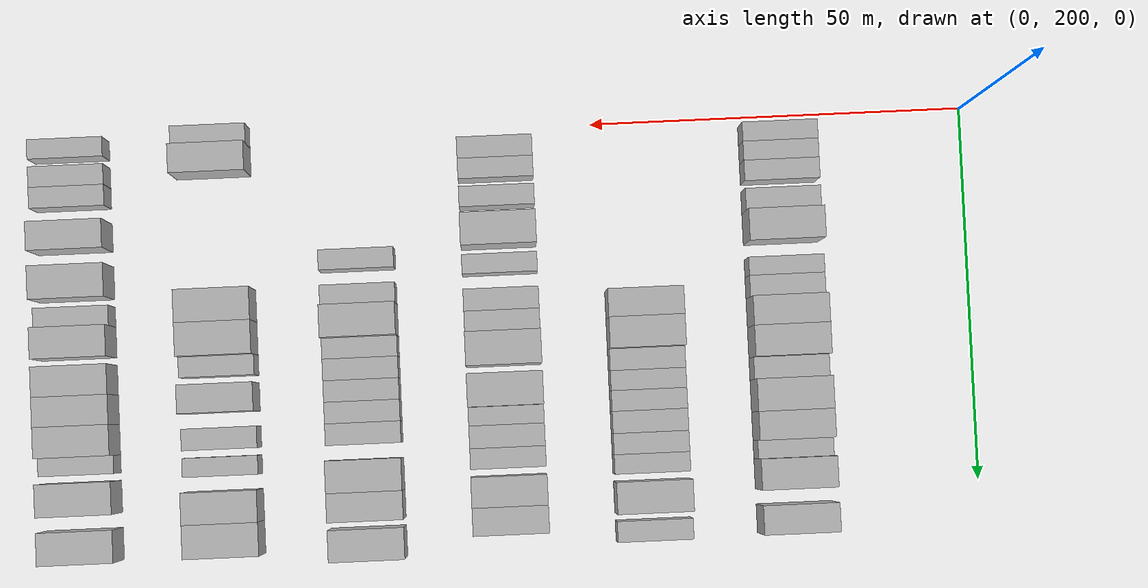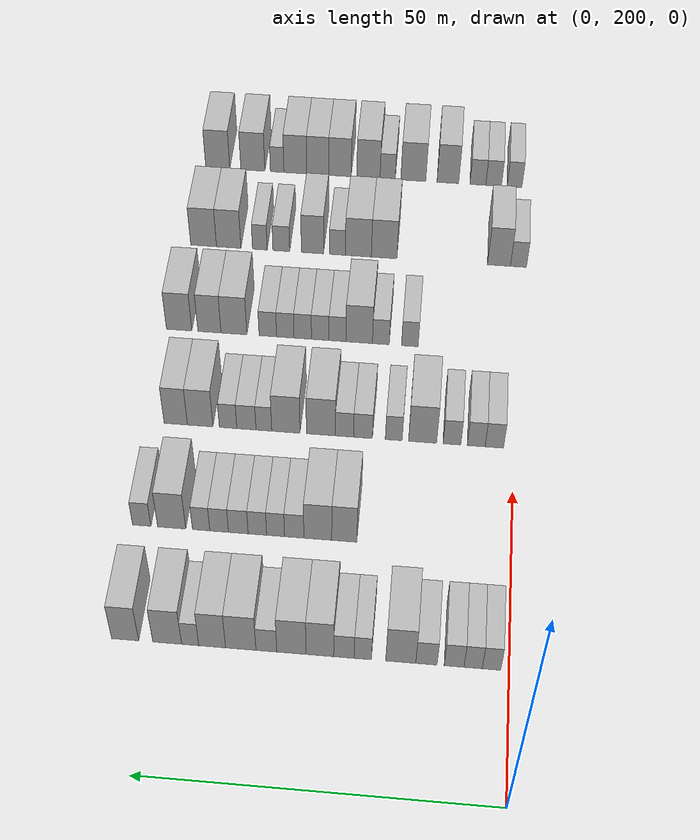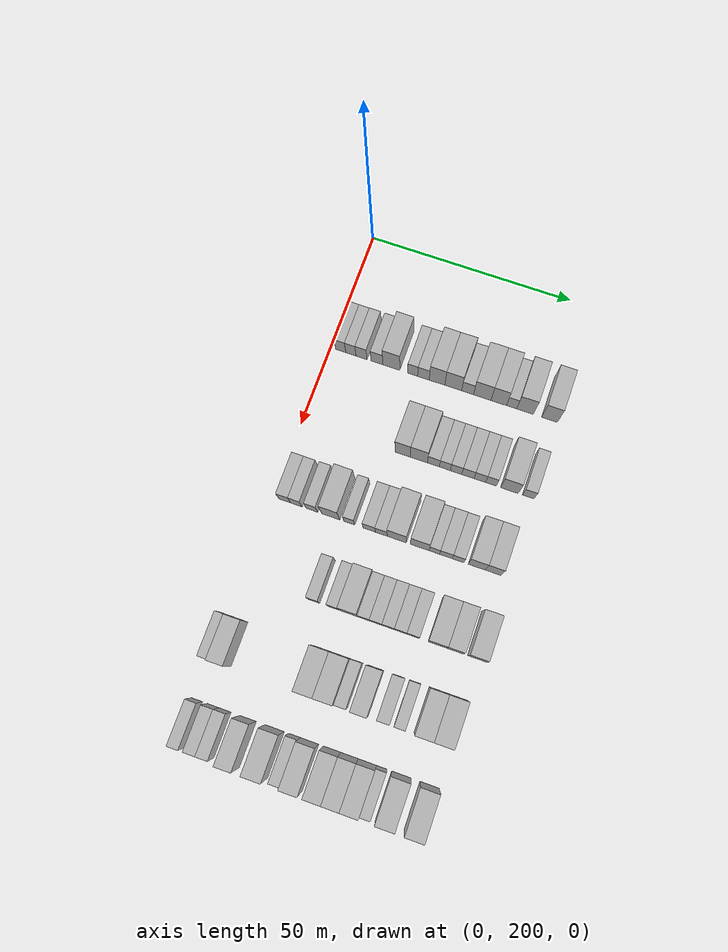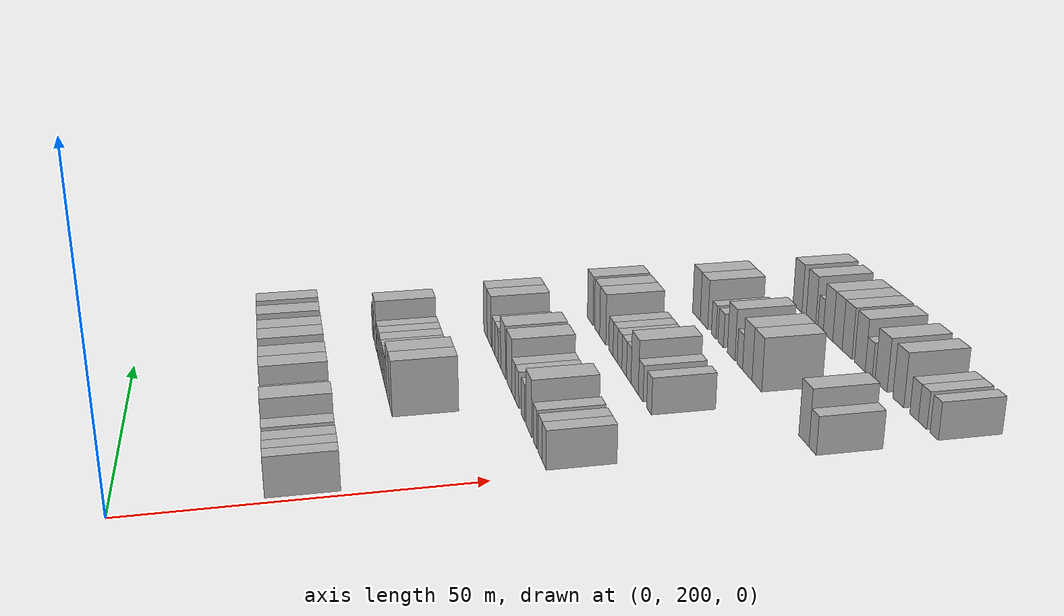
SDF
<sdf version="1.6">
 <world name="default">
  <model name="building_148">
   <static>1</static>
   <pose>25.0000 202.5290 0 0.000000 0.000000 0.000000</pose>
   <link name="link">
    <pose>0 0 3.00 0 0 0</pose>
    <collision name="collision"><geometry><box><size>10.0000 2.5559 6.0000</size></box></geometry></collision>
    <visual name="visual">
     <cast_shadows>0</cast_shadows>
     <geometry><box><size>10.0000 2.5559 6.0000</size></box></geometry>
     <material>
      <script>
       <uri>model://HANNAS_wall/materials/scripts</uri>
       <uri>model://HANNAS_wall/materials/textures</uri>
       <name>vrc/HANNAS_wall</name>
      </script>
     </material>
    </visual>
   </link>
  </model>
  <model name="building_149">
   <static>1</static>
   <pose>25.0000 205.0718 0 0.000000 0.000000 0.000000</pose>
   <link name="link">
    <pose>0 0 3.00 0 0 0</pose>
    <collision name="collision"><geometry><box><size>10.0000 2.5297 6.0000</size></box></geometry></collision>
    <visual name="visual">
     <cast_shadows>0</cast_shadows>
     <geometry><box><size>10.0000 2.5297 6.0000</size></box></geometry>
     <material>
      <script>
       <uri>model://HANNAS_wall/materials/scripts</uri>
       <uri>model://HANNAS_wall/materials/textures</uri>
       <name>vrc/HANNAS_wall</name>
      </script>
     </material>
    </visual>
   </link>
  </model>
  <model name="building_150">
   <static>1</static>
   <pose>25.0000 207.7077 0 0.000000 0.000000 0.000000</pose>
   <link name="link">
    <pose>0 0 3.00 0 0 0</pose>
    <collision name="collision"><geometry><box><size>10.0000 2.7422 6.0000</size></box></geometry></collision>
    <visual name="visual">
     <cast_shadows>0</cast_shadows>
     <geometry><box><size>10.0000 2.7422 6.0000</size></box></geometry>
     <material>
      <script>
       <uri>model://HANNAS_wall/materials/scripts</uri>
       <uri>model://HANNAS_wall/materials/textures</uri>
       <name>vrc/HANNAS_wall</name>
      </script>
     </material>
    </visual>
   </link>
  </model>
  <model name="building_151">
   <static>1</static>
   <pose>25.0000 211.5565 0 0.000000 0.000000 0.000000</pose>
   <link name="link">
    <pose>0 0 3.00 0 0 0</pose>
    <collision name="collision"><geometry><box><size>10.0000 2.9553 6.0000</size></box></geometry></collision>
    <visual name="visual">
     <cast_shadows>0</cast_shadows>
     <geometry><box><size>10.0000 2.9553 6.0000</size></box></geometry>
     <material>
      <script>
       <uri>model://HANNAS_wall/materials/scripts</uri>
       <uri>model://HANNAS_wall/materials/textures</uri>
       <name>vrc/HANNAS_wall</name>
      </script>
     </material>
    </visual>
   </link>
  </model>
  <model name="building_152">
   <static>1</static>
   <pose>25.0000 215.1297 0 0.000000 0.000000 0.000000</pose>
   <link name="link">
    <pose>0 0 4.50 0 0 0</pose>
    <collision name="collision"><geometry><box><size>10.0000 4.1912 9.0000</size></box></geometry></collision>
    <visual name="visual">
     <cast_shadows>0</cast_shadows>
     <geometry><box><size>10.0000 4.1912 9.0000</size></box></geometry>
     <material>
      <script>
       <uri>model://HANNAS_wall/materials/scripts</uri>
       <uri>model://HANNAS_wall/materials/textures</uri>
       <name>vrc/HANNAS_wall</name>
      </script>
     </material>
    </visual>
   </link>
  </model>
  <model name="building_153">
   <static>1</static>
   <pose>25.0000 220.4366 0 0.000000 0.000000 0.000000</pose>
   <link name="link">
    <pose>0 0 3.00 0 0 0</pose>
    <collision name="collision"><geometry><box><size>10.0000 2.4225 6.0000</size></box></geometry></collision>
    <visual name="visual">
     <cast_shadows>0</cast_shadows>
     <geometry><box><size>10.0000 2.4225 6.0000</size></box></geometry>
     <material>
      <script>
       <uri>model://HANNAS_wall/materials/scripts</uri>
       <uri>model://HANNAS_wall/materials/textures</uri>
       <name>vrc/HANNAS_wall</name>
      </script>
     </material>
    </visual>
   </link>
  </model>
  <model name="building_154">
   <static>1</static>
   <pose>25.0000 223.0763 0 0.000000 0.000000 0.000000</pose>
   <link name="link">
    <pose>0 0 3.00 0 0 0</pose>
    <collision name="collision"><geometry><box><size>10.0000 2.8568 6.0000</size></box></geometry></collision>
    <visual name="visual">
     <cast_shadows>0</cast_shadows>
     <geometry><box><size>10.0000 2.8568 6.0000</size></box></geometry>
     <material>
      <script>
       <uri>model://HANNAS_wall/materials/scripts</uri>
       <uri>model://HANNAS_wall/materials/textures</uri>
       <name>vrc/HANNAS_wall</name>
      </script>
     </material>
    </visual>
   </link>
  </model>
  <model name="building_155">
   <static>1</static>
   <pose>25.0000 226.4395 0 0.000000 0.000000 0.000000</pose>
   <link name="link">
    <pose>0 0 4.50 0 0 0</pose>
    <collision name="collision"><geometry><box><size>10.0000 3.8696 9.0000</size></box></geometry></collision>
    <visual name="visual">
     <cast_shadows>0</cast_shadows>
     <geometry><box><size>10.0000 3.8696 9.0000</size></box></geometry>
     <material>
      <script>
       <uri>model://HANNAS_wall/materials/scripts</uri>
       <uri>model://HANNAS_wall/materials/textures</uri>
       <name>vrc/HANNAS_wall</name>
      </script>
     </material>
    </visual>
   </link>
  </model>
  <model name="building_156">
   <static>1</static>
   <pose>25.0000 230.4276 0 0.000000 0.000000 0.000000</pose>
   <link name="link">
    <pose>0 0 4.50 0 0 0</pose>
    <collision name="collision"><geometry><box><size>10.0000 4.1067 9.0000</size></box></geometry></collision>
    <visual name="visual">
     <cast_shadows>0</cast_shadows>
     <geometry><box><size>10.0000 4.1067 9.0000</size></box></geometry>
     <material>
      <script>
       <uri>model://HANNAS_wall/materials/scripts</uri>
       <uri>model://HANNAS_wall/materials/textures</uri>
       <name>vrc/HANNAS_wall</name>
      </script>
     </material>
    </visual>
   </link>
  </model>
  <model name="building_157">
   <static>1</static>
   <pose>25.0000 233.9433 0 0.000000 0.000000 0.000000</pose>
   <link name="link">
    <pose>0 0 3.00 0 0 0</pose>
    <collision name="collision"><geometry><box><size>10.0000 2.9247 6.0000</size></box></geometry></collision>
    <visual name="visual">
     <cast_shadows>0</cast_shadows>
     <geometry><box><size>10.0000 2.9247 6.0000</size></box></geometry>
     <material>
      <script>
       <uri>model://HANNAS_wall/materials/scripts</uri>
       <uri>model://HANNAS_wall/materials/textures</uri>
       <name>vrc/HANNAS_wall</name>
      </script>
     </material>
    </visual>
   </link>
  </model>
  <model name="building_158">
   <static>1</static>
   <pose>25.0000 237.5475 0 0.000000 0.000000 0.000000</pose>
   <link name="link">
    <pose>0 0 4.50 0 0 0</pose>
    <collision name="collision"><geometry><box><size>10.0000 4.2835 9.0000</size></box></geometry></collision>
    <visual name="visual">
     <cast_shadows>0</cast_shadows>
     <geometry><box><size>10.0000 4.2835 9.0000</size></box></geometry>
     <material>
      <script>
       <uri>model://HANNAS_wall/materials/scripts</uri>
       <uri>model://HANNAS_wall/materials/textures</uri>
       <name>vrc/HANNAS_wall</name>
      </script>
     </material>
    </visual>
   </link>
  </model>
  <model name="building_159">
   <static>1</static>
   <pose>25.0000 241.5822 0 0.000000 0.000000 0.000000</pose>
   <link name="link">
    <pose>0 0 4.50 0 0 0</pose>
    <collision name="collision"><geometry><box><size>10.0000 3.7859 9.0000</size></box></geometry></collision>
    <visual name="visual">
     <cast_shadows>0</cast_shadows>
     <geometry><box><size>10.0000 3.7859 9.0000</size></box></geometry>
     <material>
      <script>
       <uri>model://HANNAS_wall/materials/scripts</uri>
       <uri>model://HANNAS_wall/materials/textures</uri>
       <name>vrc/HANNAS_wall</name>
      </script>
     </material>
    </visual>
   </link>
  </model>
  <model name="building_160">
   <static>1</static>
   <pose>25.0000 244.6923 0 0.000000 0.000000 0.000000</pose>
   <link name="link">
    <pose>0 0 3.00 0 0 0</pose>
    <collision name="collision"><geometry><box><size>10.0000 2.4342 6.0000</size></box></geometry></collision>
    <visual name="visual">
     <cast_shadows>0</cast_shadows>
     <geometry><box><size>10.0000 2.4342 6.0000</size></box></geometry>
     <material>
      <script>
       <uri>model://HANNAS_wall/materials/scripts</uri>
       <uri>model://HANNAS_wall/materials/textures</uri>
       <name>vrc/HANNAS_wall</name>
      </script>
     </material>
    </visual>
   </link>
  </model>
  <model name="building_161">
   <static>1</static>
   <pose>25.0000 247.9517 0 0.000000 0.000000 0.000000</pose>
   <link name="link">
    <pose>0 0 4.50 0 0 0</pose>
    <collision name="collision"><geometry><box><size>10.0000 4.0845 9.0000</size></box></geometry></collision>
    <visual name="visual">
     <cast_shadows>0</cast_shadows>
     <geometry><box><size>10.0000 4.0845 9.0000</size></box></geometry>
     <material>
      <script>
       <uri>model://HANNAS_wall/materials/scripts</uri>
       <uri>model://HANNAS_wall/materials/textures</uri>
       <name>vrc/HANNAS_wall</name>
      </script>
     </material>
    </visual>
   </link>
  </model>
  <model name="building_162">
   <static>1</static>
   <pose>25.0000 253.9157 0 0.000000 0.000000 0.000000</pose>
   <link name="link">
    <pose>0 0 4.50 0 0 0</pose>
    <collision name="collision"><geometry><box><size>10.0000 3.8436 9.0000</size></box></geometry></collision>
    <visual name="visual">
     <cast_shadows>0</cast_shadows>
     <geometry><box><size>10.0000 3.8436 9.0000</size></box></geometry>
     <material>
      <script>
       <uri>model://HANNAS_wall/materials/scripts</uri>
       <uri>model://HANNAS_wall/materials/textures</uri>
       <name>vrc/HANNAS_wall</name>
      </script>
     </material>
    </visual>
   </link>
  </model>
  <model name="building_325">
   <static>1</static>
   <pose>44.0000 224.5938 0 0.000000 0.000000 0.000000</pose>
   <link name="link">
    <pose>0 0 4.50 0 0 0</pose>
    <collision name="collision"><geometry><box><size>10.0000 3.7046 9.0000</size></box></geometry></collision>
    <visual name="visual">
     <cast_shadows>0</cast_shadows>
     <geometry><box><size>10.0000 3.7046 9.0000</size></box></geometry>
     <material>
      <script>
       <uri>model://HANNAS_wall/materials/scripts</uri>
       <uri>model://HANNAS_wall/materials/textures</uri>
       <name>vrc/HANNAS_wall</name>
      </script>
     </material>
    </visual>
   </link>
  </model>
  <model name="building_326">
   <static>1</static>
   <pose>44.0000 228.5003 0 0.000000 0.000000 0.000000</pose>
   <link name="link">
    <pose>0 0 4.50 0 0 0</pose>
    <collision name="collision"><geometry><box><size>10.0000 4.1086 9.0000</size></box></geometry></collision>
    <visual name="visual">
     <cast_shadows>0</cast_shadows>
     <geometry><box><size>10.0000 4.1086 9.0000</size></box></geometry>
     <material>
      <script>
       <uri>model://HANNAS_wall/materials/scripts</uri>
       <uri>model://HANNAS_wall/materials/textures</uri>
       <name>vrc/HANNAS_wall</name>
      </script>
     </material>
    </visual>
   </link>
  </model>
  <model name="building_327">
   <static>1</static>
   <pose>44.0000 231.9893 0 0.000000 0.000000 0.000000</pose>
   <link name="link">
    <pose>0 0 3.00 0 0 0</pose>
    <collision name="collision"><geometry><box><size>10.0000 2.8693 6.0000</size></box></geometry></collision>
    <visual name="visual">
     <cast_shadows>0</cast_shadows>
     <geometry><box><size>10.0000 2.8693 6.0000</size></box></geometry>
     <material>
      <script>
       <uri>model://HANNAS_wall/materials/scripts</uri>
       <uri>model://HANNAS_wall/materials/textures</uri>
       <name>vrc/HANNAS_wall</name>
      </script>
     </material>
    </visual>
   </link>
  </model>
  <model name="building_328">
   <static>1</static>
   <pose>44.0000 234.7465 0 0.000000 0.000000 0.000000</pose>
   <link name="link">
    <pose>0 0 3.00 0 0 0</pose>
    <collision name="collision"><geometry><box><size>10.0000 2.6451 6.0000</size></box></geometry></collision>
    <visual name="visual">
     <cast_shadows>0</cast_shadows>
     <geometry><box><size>10.0000 2.6451 6.0000</size></box></geometry>
     <material>
      <script>
       <uri>model://HANNAS_wall/materials/scripts</uri>
       <uri>model://HANNAS_wall/materials/textures</uri>
       <name>vrc/HANNAS_wall</name>
      </script>
     </material>
    </visual>
   </link>
  </model>
  <model name="building_329">
   <static>1</static>
   <pose>44.0000 237.4425 0 0.000000 0.000000 0.000000</pose>
   <link name="link">
    <pose>0 0 3.00 0 0 0</pose>
    <collision name="collision"><geometry><box><size>10.0000 2.7470 6.0000</size></box></geometry></collision>
    <visual name="visual">
     <cast_shadows>0</cast_shadows>
     <geometry><box><size>10.0000 2.7470 6.0000</size></box></geometry>
     <material>
      <script>
       <uri>model://HANNAS_wall/materials/scripts</uri>
       <uri>model://HANNAS_wall/materials/textures</uri>
       <name>vrc/HANNAS_wall</name>
      </script>
     </material>
    </visual>
   </link>
  </model>
  <model name="building_330">
   <static>1</static>
   <pose>44.0000 240.2787 0 0.000000 0.000000 0.000000</pose>
   <link name="link">
    <pose>0 0 3.00 0 0 0</pose>
    <collision name="collision"><geometry><box><size>10.0000 2.9253 6.0000</size></box></geometry></collision>
    <visual name="visual">
     <cast_shadows>0</cast_shadows>
     <geometry><box><size>10.0000 2.9253 6.0000</size></box></geometry>
     <material>
      <script>
       <uri>model://HANNAS_wall/materials/scripts</uri>
       <uri>model://HANNAS_wall/materials/textures</uri>
       <name>vrc/HANNAS_wall</name>
      </script>
     </material>
    </visual>
   </link>
  </model>
  <model name="building_331">
   <static>1</static>
   <pose>44.0000 243.1342 0 0.000000 0.000000 0.000000</pose>
   <link name="link">
    <pose>0 0 3.00 0 0 0</pose>
    <collision name="collision"><geometry><box><size>10.0000 2.7856 6.0000</size></box></geometry></collision>
    <visual name="visual">
     <cast_shadows>0</cast_shadows>
     <geometry><box><size>10.0000 2.7856 6.0000</size></box></geometry>
     <material>
      <script>
       <uri>model://HANNAS_wall/materials/scripts</uri>
       <uri>model://HANNAS_wall/materials/textures</uri>
       <name>vrc/HANNAS_wall</name>
      </script>
     </material>
    </visual>
   </link>
  </model>
  <model name="building_332">
   <static>1</static>
   <pose>44.0000 245.8185 0 0.000000 0.000000 0.000000</pose>
   <link name="link">
    <pose>0 0 3.00 0 0 0</pose>
    <collision name="collision"><geometry><box><size>10.0000 2.5832 6.0000</size></box></geometry></collision>
    <visual name="visual">
     <cast_shadows>0</cast_shadows>
     <geometry><box><size>10.0000 2.5832 6.0000</size></box></geometry>
     <material>
      <script>
       <uri>model://HANNAS_wall/materials/scripts</uri>
       <uri>model://HANNAS_wall/materials/textures</uri>
       <name>vrc/HANNAS_wall</name>
      </script>
     </material>
    </visual>
   </link>
  </model>
  <model name="building_333">
   <static>1</static>
   <pose>44.0000 250.2145 0 0.000000 0.000000 0.000000</pose>
   <link name="link">
    <pose>0 0 4.50 0 0 0</pose>
    <collision name="collision"><geometry><box><size>10.0000 4.2087 9.0000</size></box></geometry></collision>
    <visual name="visual">
     <cast_shadows>0</cast_shadows>
     <geometry><box><size>10.0000 4.2087 9.0000</size></box></geometry>
     <material>
      <script>
       <uri>model://HANNAS_wall/materials/scripts</uri>
       <uri>model://HANNAS_wall/materials/textures</uri>
       <name>vrc/HANNAS_wall</name>
      </script>
     </material>
    </visual>
   </link>
  </model>
  <model name="building_334">
   <static>1</static>
   <pose>44.0000 254.6942 0 0.000000 0.000000 0.000000</pose>
   <link name="link">
    <pose>0 0 3.00 0 0 0</pose>
    <collision name="collision"><geometry><box><size>10.0000 2.7508 6.0000</size></box></geometry></collision>
    <visual name="visual">
     <cast_shadows>0</cast_shadows>
     <geometry><box><size>10.0000 2.7508 6.0000</size></box></geometry>
     <material>
      <script>
       <uri>model://HANNAS_wall/materials/scripts</uri>
       <uri>model://HANNAS_wall/materials/textures</uri>
       <name>vrc/HANNAS_wall</name>
      </script>
     </material>
    </visual>
   </link>
  </model>
  <model name="building_485">
   <static>1</static>
   <pose>63.0000 202.9818 0 0.000000 0.000000 0.000000</pose>
   <link name="link">
    <pose>0 0 3.00 0 0 0</pose>
    <collision name="collision"><geometry><box><size>10.0000 2.8355 6.0000</size></box></geometry></collision>
    <visual name="visual">
     <cast_shadows>0</cast_shadows>
     <geometry><box><size>10.0000 2.8355 6.0000</size></box></geometry>
     <material>
      <script>
       <uri>model://HANNAS_wall/materials/scripts</uri>
       <uri>model://HANNAS_wall/materials/textures</uri>
       <name>vrc/HANNAS_wall</name>
      </script>
     </material>
    </visual>
   </link>
  </model>
  <model name="building_486">
   <static>1</static>
   <pose>63.0000 205.7656 0 0.000000 0.000000 0.000000</pose>
   <link name="link">
    <pose>0 0 3.00 0 0 0</pose>
    <collision name="collision"><geometry><box><size>10.0000 2.7320 6.0000</size></box></geometry></collision>
    <visual name="visual">
     <cast_shadows>0</cast_shadows>
     <geometry><box><size>10.0000 2.7320 6.0000</size></box></geometry>
     <material>
      <script>
       <uri>model://HANNAS_wall/materials/scripts</uri>
       <uri>model://HANNAS_wall/materials/textures</uri>
       <name>vrc/HANNAS_wall</name>
      </script>
     </material>
    </visual>
   </link>
  </model>
  <model name="building_487">
   <static>1</static>
   <pose>63.0000 209.4990 0 0.000000 0.000000 0.000000</pose>
   <link name="link">
    <pose>0 0 3.00 0 0 0</pose>
    <collision name="collision"><geometry><box><size>10.0000 2.7348 6.0000</size></box></geometry></collision>
    <visual name="visual">
     <cast_shadows>0</cast_shadows>
     <geometry><box><size>10.0000 2.7348 6.0000</size></box></geometry>
     <material>
      <script>
       <uri>model://HANNAS_wall/materials/scripts</uri>
       <uri>model://HANNAS_wall/materials/textures</uri>
       <name>vrc/HANNAS_wall</name>
      </script>
     </material>
    </visual>
   </link>
  </model>
  <model name="building_488">
   <static>1</static>
   <pose>63.0000 214.0305 0 0.000000 0.000000 0.000000</pose>
   <link name="link">
    <pose>0 0 4.50 0 0 0</pose>
    <collision name="collision"><geometry><box><size>10.0000 4.3281 9.0000</size></box></geometry></collision>
    <visual name="visual">
     <cast_shadows>0</cast_shadows>
     <geometry><box><size>10.0000 4.3281 9.0000</size></box></geometry>
     <material>
      <script>
       <uri>model://HANNAS_wall/materials/scripts</uri>
       <uri>model://HANNAS_wall/materials/textures</uri>
       <name>vrc/HANNAS_wall</name>
      </script>
     </material>
    </visual>
   </link>
  </model>
  <model name="building_489">
   <static>1</static>
   <pose>63.0000 218.4917 0 0.000000 0.000000 0.000000</pose>
   <link name="link">
    <pose>0 0 3.00 0 0 0</pose>
    <collision name="collision"><geometry><box><size>10.0000 2.5944 6.0000</size></box></geometry></collision>
    <visual name="visual">
     <cast_shadows>0</cast_shadows>
     <geometry><box><size>10.0000 2.5944 6.0000</size></box></geometry>
     <material>
      <script>
       <uri>model://HANNAS_wall/materials/scripts</uri>
       <uri>model://HANNAS_wall/materials/textures</uri>
       <name>vrc/HANNAS_wall</name>
      </script>
     </material>
    </visual>
   </link>
  </model>
  <model name="building_490">
   <static>1</static>
   <pose>63.0000 223.2541 0 0.000000 0.000000 0.000000</pose>
   <link name="link">
    <pose>0 0 3.00 0 0 0</pose>
    <collision name="collision"><geometry><box><size>10.0000 2.9304 6.0000</size></box></geometry></collision>
    <visual name="visual">
     <cast_shadows>0</cast_shadows>
     <geometry><box><size>10.0000 2.9304 6.0000</size></box></geometry>
     <material>
      <script>
       <uri>model://HANNAS_wall/materials/scripts</uri>
       <uri>model://HANNAS_wall/materials/textures</uri>
       <name>vrc/HANNAS_wall</name>
      </script>
     </material>
    </visual>
   </link>
  </model>
  <model name="building_491">
   <static>1</static>
   <pose>63.0000 226.1312 0 0.000000 0.000000 0.000000</pose>
   <link name="link">
    <pose>0 0 3.00 0 0 0</pose>
    <collision name="collision"><geometry><box><size>10.0000 2.8238 6.0000</size></box></geometry></collision>
    <visual name="visual">
     <cast_shadows>0</cast_shadows>
     <geometry><box><size>10.0000 2.8238 6.0000</size></box></geometry>
     <material>
      <script>
       <uri>model://HANNAS_wall/materials/scripts</uri>
       <uri>model://HANNAS_wall/materials/textures</uri>
       <name>vrc/HANNAS_wall</name>
      </script>
     </material>
    </visual>
   </link>
  </model>
  <model name="building_492">
   <static>1</static>
   <pose>63.0000 229.7914 0 0.000000 0.000000 0.000000</pose>
   <link name="link">
    <pose>0 0 4.50 0 0 0</pose>
    <collision name="collision"><geometry><box><size>10.0000 4.4967 9.0000</size></box></geometry></collision>
    <visual name="visual">
     <cast_shadows>0</cast_shadows>
     <geometry><box><size>10.0000 4.4967 9.0000</size></box></geometry>
     <material>
      <script>
       <uri>model://HANNAS_wall/materials/scripts</uri>
       <uri>model://HANNAS_wall/materials/textures</uri>
       <name>vrc/HANNAS_wall</name>
      </script>
     </material>
    </visual>
   </link>
  </model>
  <model name="building_493">
   <static>1</static>
   <pose>63.0000 235.2424 0 0.000000 0.000000 0.000000</pose>
   <link name="link">
    <pose>0 0 4.50 0 0 0</pose>
    <collision name="collision"><geometry><box><size>10.0000 4.4054 9.0000</size></box></geometry></collision>
    <visual name="visual">
     <cast_shadows>0</cast_shadows>
     <geometry><box><size>10.0000 4.4054 9.0000</size></box></geometry>
     <material>
      <script>
       <uri>model://HANNAS_wall/materials/scripts</uri>
       <uri>model://HANNAS_wall/materials/textures</uri>
       <name>vrc/HANNAS_wall</name>
      </script>
     </material>
    </visual>
   </link>
  </model>
  <model name="building_494">
   <static>1</static>
   <pose>63.0000 238.6746 0 0.000000 0.000000 0.000000</pose>
   <link name="link">
    <pose>0 0 3.00 0 0 0</pose>
    <collision name="collision"><geometry><box><size>10.0000 2.4589 6.0000</size></box></geometry></collision>
    <visual name="visual">
     <cast_shadows>0</cast_shadows>
     <geometry><box><size>10.0000 2.4589 6.0000</size></box></geometry>
     <material>
      <script>
       <uri>model://HANNAS_wall/materials/scripts</uri>
       <uri>model://HANNAS_wall/materials/textures</uri>
       <name>vrc/HANNAS_wall</name>
      </script>
     </material>
    </visual>
   </link>
  </model>
  <model name="building_495">
   <static>1</static>
   <pose>63.0000 241.4038 0 0.000000 0.000000 0.000000</pose>
   <link name="link">
    <pose>0 0 3.00 0 0 0</pose>
    <collision name="collision"><geometry><box><size>10.0000 2.9996 6.0000</size></box></geometry></collision>
    <visual name="visual">
     <cast_shadows>0</cast_shadows>
     <geometry><box><size>10.0000 2.9996 6.0000</size></box></geometry>
     <material>
      <script>
       <uri>model://HANNAS_wall/materials/scripts</uri>
       <uri>model://HANNAS_wall/materials/textures</uri>
       <name>vrc/HANNAS_wall</name>
      </script>
     </material>
    </visual>
   </link>
  </model>
  <model name="building_496">
   <static>1</static>
   <pose>63.0000 244.2727 0 0.000000 0.000000 0.000000</pose>
   <link name="link">
    <pose>0 0 3.00 0 0 0</pose>
    <collision name="collision"><geometry><box><size>10.0000 2.7382 6.0000</size></box></geometry></collision>
    <visual name="visual">
     <cast_shadows>0</cast_shadows>
     <geometry><box><size>10.0000 2.7382 6.0000</size></box></geometry>
     <material>
      <script>
       <uri>model://HANNAS_wall/materials/scripts</uri>
       <uri>model://HANNAS_wall/materials/textures</uri>
       <name>vrc/HANNAS_wall</name>
      </script>
     </material>
    </visual>
   </link>
  </model>
  <model name="building_497">
   <static>1</static>
   <pose>63.0000 248.6441 0 0.000000 0.000000 0.000000</pose>
   <link name="link">
    <pose>0 0 4.50 0 0 0</pose>
    <collision name="collision"><geometry><box><size>10.0000 4.0046 9.0000</size></box></geometry></collision>
    <visual name="visual">
     <cast_shadows>0</cast_shadows>
     <geometry><box><size>10.0000 4.0046 9.0000</size></box></geometry>
     <material>
      <script>
       <uri>model://HANNAS_wall/materials/scripts</uri>
       <uri>model://HANNAS_wall/materials/textures</uri>
       <name>vrc/HANNAS_wall</name>
      </script>
     </material>
    </visual>
   </link>
  </model>
  <model name="building_498">
   <static>1</static>
   <pose>63.0000 252.4736 0 0.000000 0.000000 0.000000</pose>
   <link name="link">
    <pose>0 0 4.50 0 0 0</pose>
    <collision name="collision"><geometry><box><size>10.0000 3.6543 9.0000</size></box></geometry></collision>
    <visual name="visual">
     <cast_shadows>0</cast_shadows>
     <geometry><box><size>10.0000 3.6543 9.0000</size></box></geometry>
     <material>
      <script>
       <uri>model://HANNAS_wall/materials/scripts</uri>
       <uri>model://HANNAS_wall/materials/textures</uri>
       <name>vrc/HANNAS_wall</name>
      </script>
     </material>
    </visual>
   </link>
  </model>
  <model name="building_656">
   <static>1</static>
   <pose>82.0000 217.0692 0 0.000000 0.000000 0.000000</pose>
   <link name="link">
    <pose>0 0 3.00 0 0 0</pose>
    <collision name="collision"><geometry><box><size>10.0000 2.6947 6.0000</size></box></geometry></collision>
    <visual name="visual">
     <cast_shadows>0</cast_shadows>
     <geometry><box><size>10.0000 2.6947 6.0000</size></box></geometry>
     <material>
      <script>
       <uri>model://HANNAS_wall/materials/scripts</uri>
       <uri>model://HANNAS_wall/materials/textures</uri>
       <name>vrc/HANNAS_wall</name>
      </script>
     </material>
    </visual>
   </link>
  </model>
  <model name="building_657">
   <static>1</static>
   <pose>82.0000 221.7816 0 0.000000 0.000000 0.000000</pose>
   <link name="link">
    <pose>0 0 3.00 0 0 0</pose>
    <collision name="collision"><geometry><box><size>10.0000 2.7301 6.0000</size></box></geometry></collision>
    <visual name="visual">
     <cast_shadows>0</cast_shadows>
     <geometry><box><size>10.0000 2.7301 6.0000</size></box></geometry>
     <material>
      <script>
       <uri>model://HANNAS_wall/materials/scripts</uri>
       <uri>model://HANNAS_wall/materials/textures</uri>
       <name>vrc/HANNAS_wall</name>
      </script>
     </material>
    </visual>
   </link>
  </model>
  <model name="building_658">
   <static>1</static>
   <pose>82.0000 225.3092 0 0.000000 0.000000 0.000000</pose>
   <link name="link">
    <pose>0 0 4.50 0 0 0</pose>
    <collision name="collision"><geometry><box><size>10.0000 4.3251 9.0000</size></box></geometry></collision>
    <visual name="visual">
     <cast_shadows>0</cast_shadows>
     <geometry><box><size>10.0000 4.3251 9.0000</size></box></geometry>
     <material>
      <script>
       <uri>model://HANNAS_wall/materials/scripts</uri>
       <uri>model://HANNAS_wall/materials/textures</uri>
       <name>vrc/HANNAS_wall</name>
      </script>
     </material>
    </visual>
   </link>
  </model>
  <model name="building_659">
   <static>1</static>
   <pose>82.0000 228.8467 0 0.000000 0.000000 0.000000</pose>
   <link name="link">
    <pose>0 0 3.00 0 0 0</pose>
    <collision name="collision"><geometry><box><size>10.0000 2.7499 6.0000</size></box></geometry></collision>
    <visual name="visual">
     <cast_shadows>0</cast_shadows>
     <geometry><box><size>10.0000 2.7499 6.0000</size></box></geometry>
     <material>
      <script>
       <uri>model://HANNAS_wall/materials/scripts</uri>
       <uri>model://HANNAS_wall/materials/textures</uri>
       <name>vrc/HANNAS_wall</name>
      </script>
     </material>
    </visual>
   </link>
  </model>
  <model name="building_660">
   <static>1</static>
   <pose>82.0000 231.6542 0 0.000000 0.000000 0.000000</pose>
   <link name="link">
    <pose>0 0 3.00 0 0 0</pose>
    <collision name="collision"><geometry><box><size>10.0000 2.8652 6.0000</size></box></geometry></collision>
    <visual name="visual">
     <cast_shadows>0</cast_shadows>
     <geometry><box><size>10.0000 2.8652 6.0000</size></box></geometry>
     <material>
      <script>
       <uri>model://HANNAS_wall/materials/scripts</uri>
       <uri>model://HANNAS_wall/materials/textures</uri>
       <name>vrc/HANNAS_wall</name>
      </script>
     </material>
    </visual>
   </link>
  </model>
  <model name="building_661">
   <static>1</static>
   <pose>82.0000 234.5075 0 0.000000 0.000000 0.000000</pose>
   <link name="link">
    <pose>0 0 3.00 0 0 0</pose>
    <collision name="collision"><geometry><box><size>10.0000 2.8414 6.0000</size></box></geometry></collision>
    <visual name="visual">
     <cast_shadows>0</cast_shadows>
     <geometry><box><size>10.0000 2.8414 6.0000</size></box></geometry>
     <material>
      <script>
       <uri>model://HANNAS_wall/materials/scripts</uri>
       <uri>model://HANNAS_wall/materials/textures</uri>
       <name>vrc/HANNAS_wall</name>
      </script>
     </material>
    </visual>
   </link>
  </model>
  <model name="building_662">
   <static>1</static>
   <pose>82.0000 237.3527 0 0.000000 0.000000 0.000000</pose>
   <link name="link">
    <pose>0 0 3.00 0 0 0</pose>
    <collision name="collision"><geometry><box><size>10.0000 2.8490 6.0000</size></box></geometry></collision>
    <visual name="visual">
     <cast_shadows>0</cast_shadows>
     <geometry><box><size>10.0000 2.8490 6.0000</size></box></geometry>
     <material>
      <script>
       <uri>model://HANNAS_wall/materials/scripts</uri>
       <uri>model://HANNAS_wall/materials/textures</uri>
       <name>vrc/HANNAS_wall</name>
      </script>
     </material>
    </visual>
   </link>
  </model>
  <model name="building_663">
   <static>1</static>
   <pose>82.0000 240.2123 0 0.000000 0.000000 0.000000</pose>
   <link name="link">
    <pose>0 0 3.00 0 0 0</pose>
    <collision name="collision"><geometry><box><size>10.0000 2.8701 6.0000</size></box></geometry></collision>
    <visual name="visual">
     <cast_shadows>0</cast_shadows>
     <geometry><box><size>10.0000 2.8701 6.0000</size></box></geometry>
     <material>
      <script>
       <uri>model://HANNAS_wall/materials/scripts</uri>
       <uri>model://HANNAS_wall/materials/textures</uri>
       <name>vrc/HANNAS_wall</name>
      </script>
     </material>
    </visual>
   </link>
  </model>
  <model name="building_664">
   <static>1</static>
   <pose>82.0000 245.7737 0 0.000000 0.000000 0.000000</pose>
   <link name="link">
    <pose>0 0 4.50 0 0 0</pose>
    <collision name="collision"><geometry><box><size>10.0000 4.2526 9.0000</size></box></geometry></collision>
    <visual name="visual">
     <cast_shadows>0</cast_shadows>
     <geometry><box><size>10.0000 4.2526 9.0000</size></box></geometry>
     <material>
      <script>
       <uri>model://HANNAS_wall/materials/scripts</uri>
       <uri>model://HANNAS_wall/materials/textures</uri>
       <name>vrc/HANNAS_wall</name>
      </script>
     </material>
    </visual>
   </link>
  </model>
  <model name="building_665">
   <static>1</static>
   <pose>82.0000 249.8009 0 0.000000 0.000000 0.000000</pose>
   <link name="link">
    <pose>0 0 4.50 0 0 0</pose>
    <collision name="collision"><geometry><box><size>10.0000 3.8019 9.0000</size></box></geometry></collision>
    <visual name="visual">
     <cast_shadows>0</cast_shadows>
     <geometry><box><size>10.0000 3.8019 9.0000</size></box></geometry>
     <material>
      <script>
       <uri>model://HANNAS_wall/materials/scripts</uri>
       <uri>model://HANNAS_wall/materials/textures</uri>
       <name>vrc/HANNAS_wall</name>
      </script>
     </material>
    </visual>
   </link>
  </model>
  <model name="building_666">
   <static>1</static>
   <pose>82.0000 254.7961 0 0.000000 0.000000 0.000000</pose>
   <link name="link">
    <pose>0 0 4.50 0 0 0</pose>
    <collision name="collision"><geometry><box><size>10.0000 4.1884 9.0000</size></box></geometry></collision>
    <visual name="visual">
     <cast_shadows>0</cast_shadows>
     <geometry><box><size>10.0000 4.1884 9.0000</size></box></geometry>
     <material>
      <script>
       <uri>model://HANNAS_wall/materials/scripts</uri>
       <uri>model://HANNAS_wall/materials/textures</uri>
       <name>vrc/HANNAS_wall</name>
      </script>
     </material>
    </visual>
   </link>
  </model>
  <model name="building_825">
   <static>1</static>
   <pose>101.0000 199.7542 0 0.000000 0.000000 0.000000</pose>
   <link name="link">
    <pose>0 0 3.00 0 0 0</pose>
    <collision name="collision"><geometry><box><size>10.0000 2.6968 6.0000</size></box></geometry></collision>
    <visual name="visual">
     <cast_shadows>0</cast_shadows>
     <geometry><box><size>10.0000 2.6968 6.0000</size></box></geometry>
     <material>
      <script>
       <uri>model://HANNAS_wall/materials/scripts</uri>
       <uri>model://HANNAS_wall/materials/textures</uri>
       <name>vrc/HANNAS_wall</name>
      </script>
     </material>
    </visual>
   </link>
  </model>
  <model name="building_826">
   <static>1</static>
   <pose>101.0000 203.0353 0 0.000000 0.000000 0.000000</pose>
   <link name="link">
    <pose>0 0 4.50 0 0 0</pose>
    <collision name="collision"><geometry><box><size>10.0000 3.8655 9.0000</size></box></geometry></collision>
    <visual name="visual">
     <cast_shadows>0</cast_shadows>
     <geometry><box><size>10.0000 3.8655 9.0000</size></box></geometry>
     <material>
      <script>
       <uri>model://HANNAS_wall/materials/scripts</uri>
       <uri>model://HANNAS_wall/materials/textures</uri>
       <name>vrc/HANNAS_wall</name>
      </script>
     </material>
    </visual>
   </link>
  </model>
  <model name="building_827">
   <static>1</static>
   <pose>101.0000 222.5031 0 0.000000 0.000000 0.000000</pose>
   <link name="link">
    <pose>0 0 4.50 0 0 0</pose>
    <collision name="collision"><geometry><box><size>10.0000 4.3567 9.0000</size></box></geometry></collision>
    <visual name="visual">
     <cast_shadows>0</cast_shadows>
     <geometry><box><size>10.0000 4.3567 9.0000</size></box></geometry>
     <material>
      <script>
       <uri>model://HANNAS_wall/materials/scripts</uri>
       <uri>model://HANNAS_wall/materials/textures</uri>
       <name>vrc/HANNAS_wall</name>
      </script>
     </material>
    </visual>
   </link>
  </model>
  <model name="building_828">
   <static>1</static>
   <pose>101.0000 226.8977 0 0.000000 0.000000 0.000000</pose>
   <link name="link">
    <pose>0 0 4.50 0 0 0</pose>
    <collision name="collision"><geometry><box><size>10.0000 4.4325 9.0000</size></box></geometry></collision>
    <visual name="visual">
     <cast_shadows>0</cast_shadows>
     <geometry><box><size>10.0000 4.4325 9.0000</size></box></geometry>
     <material>
      <script>
       <uri>model://HANNAS_wall/materials/scripts</uri>
       <uri>model://HANNAS_wall/materials/textures</uri>
       <name>vrc/HANNAS_wall</name>
      </script>
     </material>
    </visual>
   </link>
  </model>
  <model name="building_829">
   <static>1</static>
   <pose>101.0000 230.4785 0 0.000000 0.000000 0.000000</pose>
   <link name="link">
    <pose>0 0 3.00 0 0 0</pose>
    <collision name="collision"><geometry><box><size>10.0000 2.7292 6.0000</size></box></geometry></collision>
    <visual name="visual">
     <cast_shadows>0</cast_shadows>
     <geometry><box><size>10.0000 2.7292 6.0000</size></box></geometry>
     <material>
      <script>
       <uri>model://HANNAS_wall/materials/scripts</uri>
       <uri>model://HANNAS_wall/materials/textures</uri>
       <name>vrc/HANNAS_wall</name>
      </script>
     </material>
    </visual>
   </link>
  </model>
  <model name="building_830">
   <static>1</static>
   <pose>101.0000 234.7351 0 0.000000 0.000000 0.000000</pose>
   <link name="link">
    <pose>0 0 4.50 0 0 0</pose>
    <collision name="collision"><geometry><box><size>10.0000 3.7840 9.0000</size></box></geometry></collision>
    <visual name="visual">
     <cast_shadows>0</cast_shadows>
     <geometry><box><size>10.0000 3.7840 9.0000</size></box></geometry>
     <material>
      <script>
       <uri>model://HANNAS_wall/materials/scripts</uri>
       <uri>model://HANNAS_wall/materials/textures</uri>
       <name>vrc/HANNAS_wall</name>
      </script>
     </material>
    </visual>
   </link>
  </model>
  <model name="building_831">
   <static>1</static>
   <pose>101.0000 240.0589 0 0.000000 0.000000 0.000000</pose>
   <link name="link">
    <pose>0 0 3.00 0 0 0</pose>
    <collision name="collision"><geometry><box><size>10.0000 2.8636 6.0000</size></box></geometry></collision>
    <visual name="visual">
     <cast_shadows>0</cast_shadows>
     <geometry><box><size>10.0000 2.8636 6.0000</size></box></geometry>
     <material>
      <script>
       <uri>model://HANNAS_wall/materials/scripts</uri>
       <uri>model://HANNAS_wall/materials/textures</uri>
       <name>vrc/HANNAS_wall</name>
      </script>
     </material>
    </visual>
   </link>
  </model>
  <model name="building_832">
   <static>1</static>
   <pose>101.0000 243.7442 0 0.000000 0.000000 0.000000</pose>
   <link name="link">
    <pose>0 0 3.00 0 0 0</pose>
    <collision name="collision"><geometry><box><size>10.0000 2.5070 6.0000</size></box></geometry></collision>
    <visual name="visual">
     <cast_shadows>0</cast_shadows>
     <geometry><box><size>10.0000 2.5070 6.0000</size></box></geometry>
     <material>
      <script>
       <uri>model://HANNAS_wall/materials/scripts</uri>
       <uri>model://HANNAS_wall/materials/textures</uri>
       <name>vrc/HANNAS_wall</name>
      </script>
     </material>
    </visual>
   </link>
  </model>
  <model name="building_833">
   <static>1</static>
   <pose>101.0000 249.0997 0 0.000000 0.000000 0.000000</pose>
   <link name="link">
    <pose>0 0 4.50 0 0 0</pose>
    <collision name="collision"><geometry><box><size>10.0000 4.2040 9.0000</size></box></geometry></collision>
    <visual name="visual">
     <cast_shadows>0</cast_shadows>
     <geometry><box><size>10.0000 4.2040 9.0000</size></box></geometry>
     <material>
      <script>
       <uri>model://HANNAS_wall/materials/scripts</uri>
       <uri>model://HANNAS_wall/materials/textures</uri>
       <name>vrc/HANNAS_wall</name>
      </script>
     </material>
    </visual>
   </link>
  </model>
  <model name="building_834">
   <static>1</static>
   <pose>101.0000 253.4199 0 0.000000 0.000000 0.000000</pose>
   <link name="link">
    <pose>0 0 4.50 0 0 0</pose>
    <collision name="collision"><geometry><box><size>10.0000 4.4363 9.0000</size></box></geometry></collision>
    <visual name="visual">
     <cast_shadows>0</cast_shadows>
     <geometry><box><size>10.0000 4.4363 9.0000</size></box></geometry>
     <material>
      <script>
       <uri>model://HANNAS_wall/materials/scripts</uri>
       <uri>model://HANNAS_wall/materials/textures</uri>
       <name>vrc/HANNAS_wall</name>
      </script>
     </material>
    </visual>
   </link>
  </model>
  <model name="building_988">
   <static>1</static>
   <pose>120.0000 200.6848 0 0.000000 0.000000 0.000000</pose>
   <link name="link">
    <pose>0 0 3.00 0 0 0</pose>
    <collision name="collision"><geometry><box><size>10.0000 2.6057 6.0000</size></box></geometry></collision>
    <visual name="visual">
     <cast_shadows>0</cast_shadows>
     <geometry><box><size>10.0000 2.6057 6.0000</size></box></geometry>
     <material>
      <script>
       <uri>model://HANNAS_wall/materials/scripts</uri>
       <uri>model://HANNAS_wall/materials/textures</uri>
       <name>vrc/HANNAS_wall</name>
      </script>
     </material>
    </visual>
   </link>
  </model>
  <model name="building_989">
   <static>1</static>
   <pose>120.0000 204.3684 0 0.000000 0.000000 0.000000</pose>
   <link name="link">
    <pose>0 0 3.00 0 0 0</pose>
    <collision name="collision"><geometry><box><size>10.0000 2.7615 6.0000</size></box></geometry></collision>
    <visual name="visual">
     <cast_shadows>0</cast_shadows>
     <geometry><box><size>10.0000 2.7615 6.0000</size></box></geometry>
     <material>
      <script>
       <uri>model://HANNAS_wall/materials/scripts</uri>
       <uri>model://HANNAS_wall/materials/textures</uri>
       <name>vrc/HANNAS_wall</name>
      </script>
     </material>
    </visual>
   </link>
  </model>
  <model name="building_990">
   <static>1</static>
   <pose>120.0000 207.1465 0 0.000000 0.000000 0.000000</pose>
   <link name="link">
    <pose>0 0 3.00 0 0 0</pose>
    <collision name="collision"><geometry><box><size>10.0000 2.7948 6.0000</size></box></geometry></collision>
    <visual name="visual">
     <cast_shadows>0</cast_shadows>
     <geometry><box><size>10.0000 2.7948 6.0000</size></box></geometry>
     <material>
      <script>
       <uri>model://HANNAS_wall/materials/scripts</uri>
       <uri>model://HANNAS_wall/materials/textures</uri>
       <name>vrc/HANNAS_wall</name>
      </script>
     </material>
    </visual>
   </link>
  </model>
  <model name="building_991">
   <static>1</static>
   <pose>120.0000 212.4568 0 0.000000 0.000000 0.000000</pose>
   <link name="link">
    <pose>0 0 4.50 0 0 0</pose>
    <collision name="collision"><geometry><box><size>10.0000 3.8259 9.0000</size></box></geometry></collision>
    <visual name="visual">
     <cast_shadows>0</cast_shadows>
     <geometry><box><size>10.0000 3.8259 9.0000</size></box></geometry>
     <material>
      <script>
       <uri>model://HANNAS_wall/materials/scripts</uri>
       <uri>model://HANNAS_wall/materials/textures</uri>
       <name>vrc/HANNAS_wall</name>
      </script>
     </material>
    </visual>
   </link>
  </model>
  <model name="building_992">
   <static>1</static>
   <pose>120.0000 218.5806 0 0.000000 0.000000 0.000000</pose>
   <link name="link">
    <pose>0 0 4.50 0 0 0</pose>
    <collision name="collision"><geometry><box><size>10.0000 4.4217 9.0000</size></box></geometry></collision>
    <visual name="visual">
     <cast_shadows>0</cast_shadows>
     <geometry><box><size>10.0000 4.4217 9.0000</size></box></geometry>
     <material>
      <script>
       <uri>model://HANNAS_wall/materials/scripts</uri>
       <uri>model://HANNAS_wall/materials/textures</uri>
       <name>vrc/HANNAS_wall</name>
      </script>
     </material>
    </visual>
   </link>
  </model>
  <model name="building_993">
   <static>1</static>
   <pose>120.0000 223.1396 0 0.000000 0.000000 0.000000</pose>
   <link name="link">
    <pose>0 0 3.00 0 0 0</pose>
    <collision name="collision"><geometry><box><size>10.0000 2.6963 6.0000</size></box></geometry></collision>
    <visual name="visual">
     <cast_shadows>0</cast_shadows>
     <geometry><box><size>10.0000 2.6963 6.0000</size></box></geometry>
     <material>
      <script>
       <uri>model://HANNAS_wall/materials/scripts</uri>
       <uri>model://HANNAS_wall/materials/textures</uri>
       <name>vrc/HANNAS_wall</name>
      </script>
     </material>
    </visual>
   </link>
  </model>
  <model name="building_994">
   <static>1</static>
   <pose>120.0000 226.5619 0 0.000000 0.000000 0.000000</pose>
   <link name="link">
    <pose>0 0 4.50 0 0 0</pose>
    <collision name="collision"><geometry><box><size>10.0000 4.1484 9.0000</size></box></geometry></collision>
    <visual name="visual">
     <cast_shadows>0</cast_shadows>
     <geometry><box><size>10.0000 4.1484 9.0000</size></box></geometry>
     <material>
      <script>
       <uri>model://HANNAS_wall/materials/scripts</uri>
       <uri>model://HANNAS_wall/materials/textures</uri>
       <name>vrc/HANNAS_wall</name>
      </script>
     </material>
    </visual>
   </link>
  </model>
  <model name="building_995">
   <static>1</static>
   <pose>120.0000 231.6384 0 0.000000 0.000000 0.000000</pose>
   <link name="link">
    <pose>0 0 4.50 0 0 0</pose>
    <collision name="collision"><geometry><box><size>10.0000 4.0045 9.0000</size></box></geometry></collision>
    <visual name="visual">
     <cast_shadows>0</cast_shadows>
     <geometry><box><size>10.0000 4.0045 9.0000</size></box></geometry>
     <material>
      <script>
       <uri>model://HANNAS_wall/materials/scripts</uri>
       <uri>model://HANNAS_wall/materials/textures</uri>
       <name>vrc/HANNAS_wall</name>
      </script>
     </material>
    </visual>
   </link>
  </model>
  <model name="building_996">
   <static>1</static>
   <pose>120.0000 235.6099 0 0.000000 0.000000 0.000000</pose>
   <link name="link">
    <pose>0 0 4.50 0 0 0</pose>
    <collision name="collision"><geometry><box><size>10.0000 3.9385 9.0000</size></box></geometry></collision>
    <visual name="visual">
     <cast_shadows>0</cast_shadows>
     <geometry><box><size>10.0000 3.9385 9.0000</size></box></geometry>
     <material>
      <script>
       <uri>model://HANNAS_wall/materials/scripts</uri>
       <uri>model://HANNAS_wall/materials/textures</uri>
       <name>vrc/HANNAS_wall</name>
      </script>
     </material>
    </visual>
   </link>
  </model>
  <model name="building_997">
   <static>1</static>
   <pose>120.0000 239.6175 0 0.000000 0.000000 0.000000</pose>
   <link name="link">
    <pose>0 0 4.50 0 0 0</pose>
    <collision name="collision"><geometry><box><size>10.0000 4.0769 9.0000</size></box></geometry></collision>
    <visual name="visual">
     <cast_shadows>0</cast_shadows>
     <geometry><box><size>10.0000 4.0769 9.0000</size></box></geometry>
     <material>
      <script>
       <uri>model://HANNAS_wall/materials/scripts</uri>
       <uri>model://HANNAS_wall/materials/textures</uri>
       <name>vrc/HANNAS_wall</name>
      </script>
     </material>
    </visual>
   </link>
  </model>
  <model name="building_998">
   <static>1</static>
   <pose>120.0000 242.8605 0 0.000000 0.000000 0.000000</pose>
   <link name="link">
    <pose>0 0 3.00 0 0 0</pose>
    <collision name="collision"><geometry><box><size>10.0000 2.4091 6.0000</size></box></geometry></collision>
    <visual name="visual">
     <cast_shadows>0</cast_shadows>
     <geometry><box><size>10.0000 2.4091 6.0000</size></box></geometry>
     <material>
      <script>
       <uri>model://HANNAS_wall/materials/scripts</uri>
       <uri>model://HANNAS_wall/materials/textures</uri>
       <name>vrc/HANNAS_wall</name>
      </script>
     </material>
    </visual>
   </link>
  </model>
  <model name="building_999">
   <static>1</static>
   <pose>120.0000 247.2197 0 0.000000 0.000000 0.000000</pose>
   <link name="link">
    <pose>0 0 4.50 0 0 0</pose>
    <collision name="collision"><geometry><box><size>10.0000 4.3094 9.0000</size></box></geometry></collision>
    <visual name="visual">
     <cast_shadows>0</cast_shadows>
     <geometry><box><size>10.0000 4.3094 9.0000</size></box></geometry>
     <material>
      <script>
       <uri>model://HANNAS_wall/materials/scripts</uri>
       <uri>model://HANNAS_wall/materials/textures</uri>
       <name>vrc/HANNAS_wall</name>
      </script>
     </material>
    </visual>
   </link>
  </model>
  <model name="building_1000">
   <static>1</static>
   <pose>120.0000 253.5301 0 0.000000 0.000000 0.000000</pose>
   <link name="link">
    <pose>0 0 4.50 0 0 0</pose>
    <collision name="collision"><geometry><box><size>10.0000 4.3112 9.0000</size></box></geometry></collision>
    <visual name="visual">
     <cast_shadows>0</cast_shadows>
     <geometry><box><size>10.0000 4.3112 9.0000</size></box></geometry>
     <material>
      <script>
       <uri>model://HANNAS_wall/materials/scripts</uri>
       <uri>model://HANNAS_wall/materials/textures</uri>
       <name>vrc/HANNAS_wall</name>
      </script>
     </material>
    </visual>
   </link>
  </model>
 </world>
</sdf>
